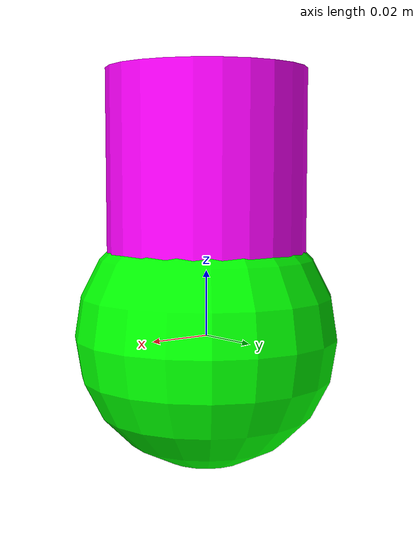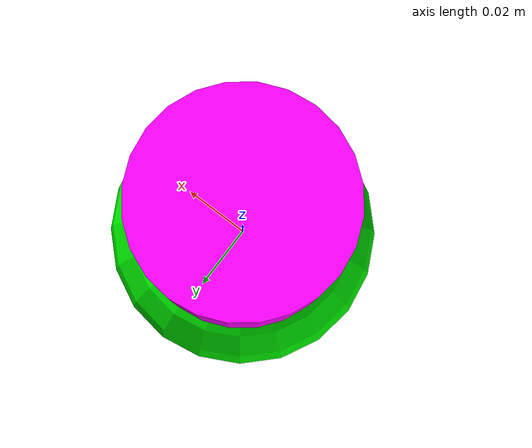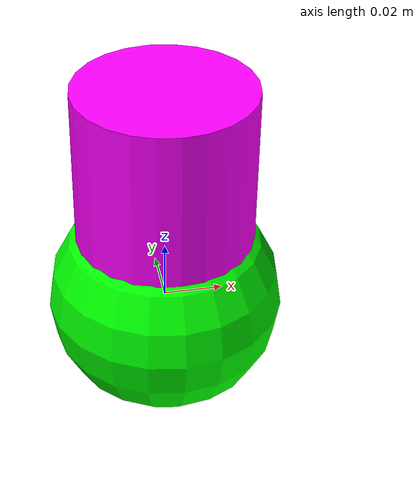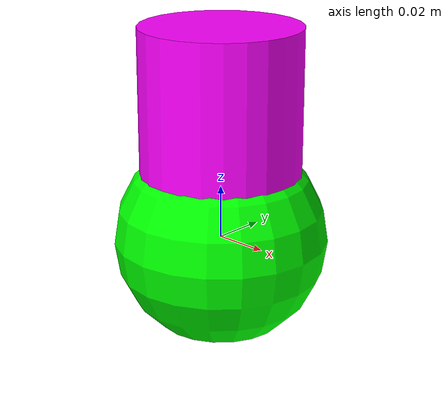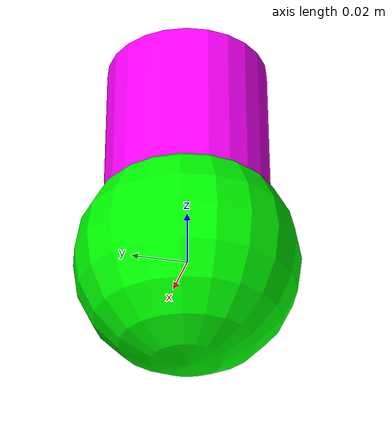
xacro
<?xml version="1.0"?>

  <robot name="my_rigid_arm" xmlns:xacro="http://ros.org/wiki/xacro">

  <material name="black">
    <color rgba="0 0 0 1"/>
  </material>

  <material name="purple">
    <color rgba="1 0 1 1"/>
  </material>

  <link name="base_link" />

  <xacro:macro name="addSegment" params="parent child color leng">

  <!-- create the next link -->
  <link name="${child}">
    <visual>
      <geometry>
            <cylinder radius="0.03" length="${leng}"/>
      </geometry>
      <origin rpy="0 0 0" xyz="0 0 ${leng/2}"/>
      <material name="${color}"/>
    </visual>
  </link>

  <!-- setup the coordinate frame -->
  <joint name="${parent}${child}" type="floating" >
      <origin xyz="0 0 0" />
      <parent link="${parent}" />
      <child link="${child}" />
  </joint>
  </xacro:macro>

  <xacro:macro name="addMarker" params="name">

    <link name="${name}">
      <visual>
        <geometry>
          <sphere radius="0.04"/>
        </geometry>
        <material name="green">
              <color rgba="0 1 0 1"/>
        </material>
      </visual>
    </link>

    <!-- setup the coordinate frame -->
  <joint name="base_link${name}" type="floating" >
      <origin xyz="0 0 0" />
      <parent link="base_link" />
      <child link="${name}" />
  </joint>
  </xacro:macro>

  <xacro:addSegment parent="base_link" child="11" color="black" leng="0.01555"/>
<xacro:addSegment parent="base_link" child="12" color="black" leng="0.01555"/>
<xacro:addSegment parent="base_link" child="13" color="black" leng="0.01555"/>
<xacro:addSegment parent="base_link" child="14" color="black" leng="0.01555"/>
<xacro:addSegment parent="base_link" child="21" color="purple" leng="0.02"/>
<xacro:addSegment parent="base_link" child="22" color="purple" leng="0.02"/>
<xacro:addSegment parent="base_link" child="23" color="purple" leng="0.02"/>
<xacro:addSegment parent="base_link" child="24" color="purple" leng="0.02"/>
<xacro:addSegment parent="base_link" child="31" color="black" leng="0.02"/>
<xacro:addSegment parent="base_link" child="32" color="black" leng="0.02"/>
<xacro:addSegment parent="base_link" child="33" color="black" leng="0.02"/>
<xacro:addSegment parent="base_link" child="34" color="black" leng="0.02"/>
<xacro:addSegment parent="base_link" child="41" color="purple" leng="0.08"/>
<xacro:addSegment parent="base_link" child="61" color="purple" leng="0.08"/>
<xacro:addSegment parent="base_link" child="71" color="black" leng="0.08"/>
<xacro:addSegment parent="base_link" child="81" color="purple" leng="0.08"/>

<xacro:addMarker name='marker_0'/>
<xacro:addMarker name='marker_1'/>
</robot>
